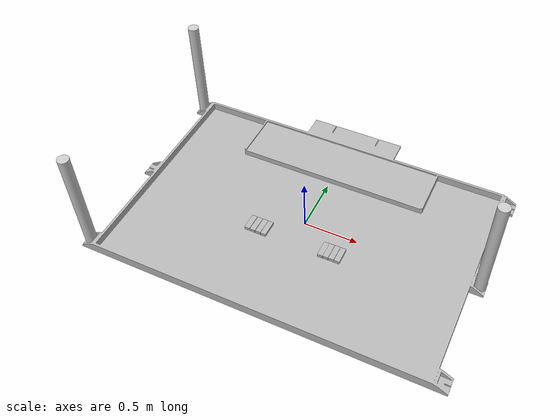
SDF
<sdf version='1.10'>
  <world name='empty'>
    <physics name='1ms' type='ignored'>
      <max_step_size>0.001</max_step_size>
      <real_time_factor>1</real_time_factor>
      <real_time_update_rate>1000</real_time_update_rate>
    </physics>
    <plugin name='gz::sim::systems::Physics' filename='gz-sim-physics-system'/>
    <plugin name='gz::sim::systems::UserCommands' filename='gz-sim-user-commands-system'/>
    <plugin name='gz::sim::systems::SceneBroadcaster' filename='gz-sim-scene-broadcaster-system'/>
    <plugin name='gz::sim::systems::Contact' filename='gz-sim-contact-system'/>
    <gravity>0 0 -9.8000000000000007</gravity>
    <magnetic_field>5.5644999999999998e-06 2.2875799999999999e-05 -4.2388400000000002e-05</magnetic_field>
    <atmosphere type='adiabatic'/>
    <scene>
      <ambient>0.400000006 0.400000006 0.400000006 1</ambient>
      <background>0.699999988 0.699999988 0.699999988 1</background>
      <shadows>true</shadows>
    </scene>
    <plugin name='gz::sim::systems::Physics' filename='gz-sim-physics-system'/>
    <plugin name='gz::sim::systems::Sensors' filename='gz-sim-sensors-system'/>
    <plugin name='gz::sim::systems::Imu' filename='gz-sim-imu-system'/>
    <plugin name='gz::sim::systems::UserCommands' filename='gz-sim-user-commands-system'/>
    <plugin name='gz::sim::systems::SceneBroadcaster' filename='gz-sim-scene-broadcaster-system'/>
    <plugin name='gz::sim::systems::MyPlugin' filename='libgz-match-plugin.so'/>
    <model name='Table_2024'>
      <static>true</static>
      <plugin name='gz::sim::systems::Label' filename='gz-sim-label-system'>
        <label>1</label>
      </plugin>
      <link name='link_0'>
        <gravity>false</gravity>
        <inertial>
          <inertia>
            <ixx>0.16666700000000001</ixx>
            <ixy>0</ixy>
            <ixz>0</ixz>
            <iyy>0.16666700000000001</iyy>
            <iyz>0</iyz>
            <izz>0.16666700000000001</izz>
          </inertia>
          <pose>0 0 0 0 0 0</pose>
          <mass>1</mass>
        </inertial>
        <pose>0 0 0 0 0 0</pose>
        <visual name='visual'>
          <pose>0 0 0 0 0 0</pose>
          <geometry>
            <mesh>
              <uri>file:///ezbot-v2/install/ezbot-v2-simulation/share/ezbot-v2-simulation/models/Table2026/table2026.dae</uri>
              <scale>1 1 1</scale>
            </mesh>
          </geometry>
          <transparency>0</transparency>
          <cast_shadows>true</cast_shadows>
        </visual>
        <collision name='collision'>
          <laser_retro>0</laser_retro>
          <max_contacts>10</max_contacts>
          <pose>0 0 0 0 0 0</pose>
          <geometry>
            <mesh>
              <uri>file:///ezbot-v2/install/ezbot-v2-simulation/share/ezbot-v2-simulation/models/Table2026/table2026.dae</uri>
              <scale>1 1 1</scale>
            </mesh>
          </geometry>
          <surface>
            <friction>
              <ode>
                <mu>1</mu>
                <mu2>1</mu2>
                <fdir1>0 0 0</fdir1>
                <slip1>0</slip1>
                <slip2>0</slip2>
              </ode>
              <torsional>
                <coefficient>1</coefficient>
                <patch_radius>0</patch_radius>
                <surface_radius>0</surface_radius>
                <use_patch_radius>true</use_patch_radius>
                <ode>
                  <slip>0</slip>
                </ode>
              </torsional>
            </friction>
            <contact>
              <collide_without_contact>false</collide_without_contact>
              <collide_without_contact_bitmask>1</collide_without_contact_bitmask>
              <collide_bitmask>1</collide_bitmask>
              <ode>
                <soft_cfm>0</soft_cfm>
                <soft_erp>0.20000000000000001</soft_erp>
                <kp>10000000000000</kp>
                <kd>1</kd>
                <max_vel>0.01</max_vel>
                <min_depth>0.01</min_depth>
              </ode>
              <bullet>
                <split_impulse>true</split_impulse>
                <split_impulse_penetration_threshold>-0.01</split_impulse_penetration_threshold>
                <soft_cfm>0</soft_cfm>
                <soft_erp>0.20000000000000001</soft_erp>
                <kp>10000000000000</kp>
                <kd>1</kd>
              </bullet>
            </contact>
          </surface>
        </collision>
        <enable_wind>false</enable_wind>
      </link>
      <pose>0 0 0 0 0 0</pose>
      <static>false</static>
      <allow_auto_disable>true</allow_auto_disable>
      <self_collide>false</self_collide>
    </model>
    <model name='Caisse_noisettes'>
      <static>false</static>
      <plugin name='gz::sim::systems::Label' filename='gz-sim-label-system'>
        <label>11</label>
      </plugin>
      <link name='link_0'>
        <gravity>true</gravity>
        <inertial>
          <pose>0 0 0.02 0 0 0</pose>
          <mass>0.025000000000000001</mass>
          <inertia>
            <ixx>2.5000000000000001e-05</ixx>
            <ixy>0</ixy>
            <ixz>0</ixz>
            <iyy>2.5000000000000001e-05</iyy>
            <iyz>0</iyz>
            <izz>7.9999999999999996e-06</izz>
          </inertia>
        </inertial>
        <pose>0 0 0 0 0 0</pose>
        <visual name='visual'>
          <pose>0 0 0 0 0 0</pose>
          <geometry>
            <mesh>
              <uri>file:///ezbot-v2/install/ezbot-v2-simulation/share/ezbot-v2-simulation/models/CaisseNoisette/CaisseNoisette.dae</uri>
              <scale>1 1 1</scale>
            </mesh>
          </geometry>
          <transparency>0</transparency>
          <cast_shadows>true</cast_shadows>
        </visual>
        <collision name='collision'>
          <laser_retro>0</laser_retro>
          <max_contacts>3</max_contacts>
          <pose>0 0 0.074999999999999997 0 0 0</pose>
          <geometry>
            <box>
              <size>0.050000000000000003 0.029999999999999999 0.14999999999999999</size>
            </box>
          </geometry>
          <surface>
            <friction>
              <ode>
                <mu>0.90000000000000002</mu>
                <mu2>0.90000000000000002</mu2>
              </ode>
            </friction>
            <contact>
              <ode>
                <soft_cfm>0</soft_cfm>
                <soft_erp>0.20000000000000001</soft_erp>
                <kp>10</kp>
                <kd>1000000000</kd>
                <max_vel>0.01</max_vel>
                <min_depth>0.001</min_depth>
              </ode>
            </contact>
            <bounce/>
          </surface>
        </collision>
        <enable_wind>false</enable_wind>
      </link>
      <pose>0.426732 -0.12675995640484372 0.014999988759249985 1.5707970936884716 1.3169680467733783e-18 1.9785953177418169e-17</pose>
      <allow_auto_disable>true</allow_auto_disable>
      <self_collide>false</self_collide>
    </model>
    <model name='Caisse_noisettes_1'>
      <static>false</static>
      <plugin name='gz::sim::systems::Label' filename='gz-sim-label-system'>
        <label>11</label>
      </plugin>
      <link name='link_0'>
        <gravity>true</gravity>
        <inertial>
          <pose>0 0 0.02 0 0 0</pose>
          <mass>0.025000000000000001</mass>
          <inertia>
            <ixx>2.5000000000000001e-05</ixx>
            <ixy>0</ixy>
            <ixz>0</ixz>
            <iyy>2.5000000000000001e-05</iyy>
            <iyz>0</iyz>
            <izz>7.9999999999999996e-06</izz>
          </inertia>
        </inertial>
        <pose>0 0 0 0 0 0</pose>
        <visual name='visual'>
          <pose>0 0 0 0 0 0</pose>
          <geometry>
            <mesh>
              <uri>file:///ezbot-v2/install/ezbot-v2-simulation/share/ezbot-v2-simulation/models/CaisseNoisette/CaisseNoisette.dae</uri>
              <scale>1 1 1</scale>
            </mesh>
          </geometry>
          <transparency>0</transparency>
          <cast_shadows>true</cast_shadows>
        </visual>
        <collision name='collision'>
          <laser_retro>0</laser_retro>
          <max_contacts>3</max_contacts>
          <pose>0 0 0.074999999999999997 0 0 0</pose>
          <geometry>
            <box>
              <size>0.050000000000000003 0.029999999999999999 0.14999999999999999</size>
            </box>
          </geometry>
          <surface>
            <friction>
              <ode>
                <mu>0.90000000000000002</mu>
                <mu2>0.90000000000000002</mu2>
              </ode>
            </friction>
            <contact>
              <ode>
                <soft_cfm>0</soft_cfm>
                <soft_erp>0.20000000000000001</soft_erp>
                <kp>10</kp>
                <kd>1000000000</kd>
                <max_vel>0.01</max_vel>
                <min_depth>0.001</min_depth>
              </ode>
            </contact>
            <bounce/>
          </surface>
        </collision>
        <enable_wind>false</enable_wind>
      </link>
      <pose>0.374052 -0.12575695640484372 0.014999988759249985 1.5707970936884716 2.8738073156656423e-19 1.9581324786029511e-17</pose>
      <allow_auto_disable>true</allow_auto_disable>
      <self_collide>false</self_collide>
    </model>
    <model name='Caisse_noisettes_2'>
      <static>false</static>
      <plugin name='gz::sim::systems::Label' filename='gz-sim-label-system'>
        <label>11</label>
      </plugin>
      <link name='link_0'>
        <gravity>true</gravity>
        <inertial>
          <pose>0 0 0.02 0 0 0</pose>
          <mass>0.025000000000000001</mass>
          <inertia>
            <ixx>2.5000000000000001e-05</ixx>
            <ixy>0</ixy>
            <ixz>0</ixz>
            <iyy>2.5000000000000001e-05</iyy>
            <iyz>0</iyz>
            <izz>7.9999999999999996e-06</izz>
          </inertia>
        </inertial>
        <pose>0 0 0 0 0 0</pose>
        <visual name='visual'>
          <pose>0 0 0 0 0 0</pose>
          <geometry>
            <mesh>
              <uri>file:///ezbot-v2/install/ezbot-v2-simulation/share/ezbot-v2-simulation/models/CaisseNoisette/CaisseNoisette.dae</uri>
              <scale>1 1 1</scale>
            </mesh>
          </geometry>
          <transparency>0</transparency>
          <cast_shadows>true</cast_shadows>
        </visual>
        <collision name='collision'>
          <laser_retro>0</laser_retro>
          <max_contacts>3</max_contacts>
          <pose>0 0 0.074999999999999997 0 0 0</pose>
          <geometry>
            <box>
              <size>0.050000000000000003 0.029999999999999999 0.14999999999999999</size>
            </box>
          </geometry>
          <surface>
            <friction>
              <ode>
                <mu>0.90000000000000002</mu>
                <mu2>0.90000000000000002</mu2>
              </ode>
            </friction>
            <contact>
              <ode>
                <soft_cfm>0</soft_cfm>
                <soft_erp>0.20000000000000001</soft_erp>
                <kp>10</kp>
                <kd>1000000000</kd>
                <max_vel>0.01</max_vel>
                <min_depth>0.001</min_depth>
              </ode>
            </contact>
            <bounce/>
          </surface>
        </collision>
        <enable_wind>false</enable_wind>
      </link>
      <pose>-0.37543174232902859 -0.12555076203495605 0.014999985913170942 1.5707962771589556 -2.9833479919111345e-08 -0.019598004272628443</pose>
      <allow_auto_disable>true</allow_auto_disable>
      <self_collide>false</self_collide>
    </model>
    <model name='Caisse_noisettes_3'>
      <static>false</static>
      <plugin name='gz::sim::systems::Label' filename='gz-sim-label-system'>
        <label>11</label>
      </plugin>
      <link name='link_0'>
        <gravity>true</gravity>
        <inertial>
          <pose>0 0 0.02 0 0 0</pose>
          <mass>0.025000000000000001</mass>
          <inertia>
            <ixx>2.5000000000000001e-05</ixx>
            <ixy>0</ixy>
            <ixz>0</ixz>
            <iyy>2.5000000000000001e-05</iyy>
            <iyz>0</iyz>
            <izz>7.9999999999999996e-06</izz>
          </inertia>
        </inertial>
        <pose>0 0 0 0 0 0</pose>
        <visual name='visual'>
          <pose>0 0 0 0 0 0</pose>
          <geometry>
            <mesh>
              <uri>file:///ezbot-v2/install/ezbot-v2-simulation/share/ezbot-v2-simulation/models/CaisseNoisette/CaisseNoisette.dae</uri>
              <scale>1 1 1</scale>
            </mesh>
          </geometry>
          <transparency>0</transparency>
          <cast_shadows>true</cast_shadows>
        </visual>
        <collision name='collision'>
          <laser_retro>0</laser_retro>
          <max_contacts>3</max_contacts>
          <pose>0 0 0.074999999999999997 0 0 0</pose>
          <geometry>
            <box>
              <size>0.050000000000000003 0.029999999999999999 0.14999999999999999</size>
            </box>
          </geometry>
          <surface>
            <friction>
              <ode>
                <mu>0.90000000000000002</mu>
                <mu2>0.90000000000000002</mu2>
              </ode>
            </friction>
            <contact>
              <ode>
                <soft_cfm>0</soft_cfm>
                <soft_erp>0.20000000000000001</soft_erp>
                <kp>10</kp>
                <kd>1000000000</kd>
                <max_vel>0.01</max_vel>
                <min_depth>0.001</min_depth>
              </ode>
            </contact>
            <bounce/>
          </surface>
        </collision>
        <enable_wind>false</enable_wind>
      </link>
      <pose>-0.27139598076638932 -0.12672108732739637 0.014999975852147806 1.5707958099992969 -1.3245979019194149e-07 -0.009055060004250718</pose>
      <allow_auto_disable>true</allow_auto_disable>
      <self_collide>false</self_collide>
    </model>
    <model name='Caisse_noisettes_4'>
      <static>false</static>
      <plugin name='gz::sim::systems::Label' filename='gz-sim-label-system'>
        <label>11</label>
      </plugin>
      <link name='link_0'>
        <gravity>true</gravity>
        <inertial>
          <pose>0 0 0.02 0 0 0</pose>
          <mass>0.025000000000000001</mass>
          <inertia>
            <ixx>2.5000000000000001e-05</ixx>
            <ixy>0</ixy>
            <ixz>0</ixz>
            <iyy>2.5000000000000001e-05</iyy>
            <iyz>0</iyz>
            <izz>7.9999999999999996e-06</izz>
          </inertia>
        </inertial>
        <pose>0 0 0 0 0 0</pose>
        <visual name='visual'>
          <pose>0 0 0 0 0 0</pose>
          <geometry>
            <mesh>
              <uri>file:///ezbot-v2/install/ezbot-v2-simulation/share/ezbot-v2-simulation/models/CaisseNoisette/CaisseNoisette.dae</uri>
              <scale>1 1 1</scale>
            </mesh>
          </geometry>
          <transparency>0</transparency>
          <cast_shadows>true</cast_shadows>
        </visual>
        <collision name='collision'>
          <laser_retro>0</laser_retro>
          <max_contacts>3</max_contacts>
          <pose>0 0 0.074999999999999997 0 0 0</pose>
          <geometry>
            <box>
              <size>0.050000000000000003 0.029999999999999999 0.14999999999999999</size>
            </box>
          </geometry>
          <surface>
            <friction>
              <ode>
                <mu>0.90000000000000002</mu>
                <mu2>0.90000000000000002</mu2>
              </ode>
            </friction>
            <contact>
              <ode>
                <soft_cfm>0</soft_cfm>
                <soft_erp>0.20000000000000001</soft_erp>
                <kp>10</kp>
                <kd>1000000000</kd>
                <max_vel>0.01</max_vel>
                <min_depth>0.001</min_depth>
              </ode>
            </contact>
            <bounce/>
          </surface>
        </collision>
        <enable_wind>false</enable_wind>
      </link>
      <pose>0.32200999999985475 -0.12637694490083248 0.014999985792964037 -1.5707963267560681 -1.5949948245911933e-14 -3.1415900000000621</pose>
      <allow_auto_disable>true</allow_auto_disable>
      <self_collide>false</self_collide>
    </model>
    <model name='Caisse_noisettes_5'>
      <static>false</static>
      <plugin name='gz::sim::systems::Label' filename='gz-sim-label-system'>
        <label>11</label>
      </plugin>
      <link name='link_0'>
        <gravity>true</gravity>
        <inertial>
          <pose>0 0 0.02 0 0 0</pose>
          <mass>0.025000000000000001</mass>
          <inertia>
            <ixx>2.5000000000000001e-05</ixx>
            <ixy>0</ixy>
            <ixz>0</ixz>
            <iyy>2.5000000000000001e-05</iyy>
            <iyz>0</iyz>
            <izz>7.9999999999999996e-06</izz>
          </inertia>
        </inertial>
        <pose>0 0 0 0 0 0</pose>
        <visual name='visual'>
          <pose>0 0 0 0 0 0</pose>
          <geometry>
            <mesh>
              <uri>file:///ezbot-v2/install/ezbot-v2-simulation/share/ezbot-v2-simulation/models/CaisseNoisette/CaisseNoisette.dae</uri>
              <scale>1 1 1</scale>
            </mesh>
          </geometry>
          <transparency>0</transparency>
          <cast_shadows>true</cast_shadows>
        </visual>
        <collision name='collision'>
          <laser_retro>0</laser_retro>
          <max_contacts>3</max_contacts>
          <pose>0 0 0.074999999999999997 0 0 0</pose>
          <geometry>
            <box>
              <size>0.050000000000000003 0.029999999999999999 0.14999999999999999</size>
            </box>
          </geometry>
          <surface>
            <friction>
              <ode>
                <mu>0.90000000000000002</mu>
                <mu2>0.90000000000000002</mu2>
              </ode>
            </friction>
            <contact>
              <ode>
                <soft_cfm>0</soft_cfm>
                <soft_erp>0.20000000000000001</soft_erp>
                <kp>10</kp>
                <kd>1000000000</kd>
                <max_vel>0.01</max_vel>
                <min_depth>0.001</min_depth>
              </ode>
            </contact>
            <bounce/>
          </surface>
        </collision>
        <enable_wind>false</enable_wind>
      </link>
      <pose>0.27201000000014514 -0.12862494490083234 0.014999985792964039 -1.5707963267560736 1.522333373760404e-14 3.1415900000000634</pose>
      <allow_auto_disable>true</allow_auto_disable>
      <self_collide>false</self_collide>
    </model>
    <model name='Caisse_noisettes_6'>
      <static>false</static>
      <plugin name='gz::sim::systems::Label' filename='gz-sim-label-system'>
        <label>11</label>
      </plugin>
      <link name='link_0'>
        <gravity>true</gravity>
        <inertial>
          <pose>0 0 0.02 0 0 0</pose>
          <mass>0.025000000000000001</mass>
          <inertia>
            <ixx>2.5000000000000001e-05</ixx>
            <ixy>0</ixy>
            <ixz>0</ixz>
            <iyy>2.5000000000000001e-05</iyy>
            <iyz>0</iyz>
            <izz>7.9999999999999996e-06</izz>
          </inertia>
        </inertial>
        <pose>0 0 0 0 0 0</pose>
        <visual name='visual'>
          <pose>0 0 0 0 0 0</pose>
          <geometry>
            <mesh>
              <uri>file:///ezbot-v2/install/ezbot-v2-simulation/share/ezbot-v2-simulation/models/CaisseNoisette/CaisseNoisette.dae</uri>
              <scale>1 1 1</scale>
            </mesh>
          </geometry>
          <transparency>0</transparency>
          <cast_shadows>true</cast_shadows>
        </visual>
        <collision name='collision'>
          <laser_retro>0</laser_retro>
          <max_contacts>3</max_contacts>
          <pose>0 0 0.074999999999999997 0 0 0</pose>
          <geometry>
            <box>
              <size>0.050000000000000003 0.029999999999999999 0.14999999999999999</size>
            </box>
          </geometry>
          <surface>
            <friction>
              <ode>
                <mu>0.90000000000000002</mu>
                <mu2>0.90000000000000002</mu2>
              </ode>
            </friction>
            <contact>
              <ode>
                <soft_cfm>0</soft_cfm>
                <soft_erp>0.20000000000000001</soft_erp>
                <kp>10</kp>
                <kd>1000000000</kd>
                <max_vel>0.01</max_vel>
                <min_depth>0.001</min_depth>
              </ode>
            </contact>
            <bounce/>
          </surface>
        </collision>
        <enable_wind>false</enable_wind>
      </link>
      <pose>-0.32297600151712635 -0.12530794488345279 0.014999986555270012 -1.5707963266481995 1.8743014767834409e-08 3.1326699999994934</pose>
      <allow_auto_disable>true</allow_auto_disable>
      <self_collide>false</self_collide>
    </model>
    <model name='Caisse_noisettes_6_1'>
      <static>false</static>
      <plugin name='gz::sim::systems::Label' filename='gz-sim-label-system'>
        <label>11</label>
      </plugin>
      <link name='link_0'>
        <gravity>true</gravity>
        <inertial>
          <pose>0 0 0.02 0 0 0</pose>
          <mass>0.025000000000000001</mass>
          <inertia>
            <ixx>2.5000000000000001e-05</ixx>
            <ixy>0</ixy>
            <ixz>0</ixz>
            <iyy>2.5000000000000001e-05</iyy>
            <iyz>0</iyz>
            <izz>7.9999999999999996e-06</izz>
          </inertia>
        </inertial>
        <pose>0 0 0 0 0 0</pose>
        <visual name='visual'>
          <pose>0 0 0 0 0 0</pose>
          <geometry>
            <mesh>
              <uri>file:///ezbot-v2/install/ezbot-v2-simulation/share/ezbot-v2-simulation/models/CaisseNoisette/CaisseNoisette.dae</uri>
              <scale>1 1 1</scale>
            </mesh>
          </geometry>
          <transparency>0</transparency>
          <cast_shadows>true</cast_shadows>
        </visual>
        <collision name='collision'>
          <laser_retro>0</laser_retro>
          <max_contacts>3</max_contacts>
          <pose>0 0 0.074999999999999997 0 0 0</pose>
          <geometry>
            <box>
              <size>0.050000000000000003 0.029999999999999999 0.14999999999999999</size>
            </box>
          </geometry>
          <surface>
            <friction>
              <ode>
                <mu>0.90000000000000002</mu>
                <mu2>0.90000000000000002</mu2>
              </ode>
            </friction>
            <contact>
              <ode>
                <soft_cfm>0</soft_cfm>
                <soft_erp>0.20000000000000001</soft_erp>
                <kp>10</kp>
                <kd>1000000000</kd>
                <max_vel>0.01</max_vel>
                <min_depth>0.001</min_depth>
              </ode>
            </contact>
            <bounce/>
          </surface>
        </collision>
        <enable_wind>false</enable_wind>
      </link>
      <pose>-0.42987799948028138 -0.12431694490328354 0.014999985792964035 -1.5707963267560738 -1.9949319973733282e-16 3.1321599999999674</pose>
      <allow_auto_disable>true</allow_auto_disable>
      <self_collide>false</self_collide>
    </model>
    <include>
      <uri>file:///ezbot-v2/install/ezbot-v2-simulation/share/ezbot-v2-simulation/models/poteau</uri>
      <name>Poteau</name>
      <pose>-1.5940834785821341 0.95127999884232251 0 0 0 0</pose>
    </include>
    <include>
      <uri>file:///ezbot-v2/install/ezbot-v2-simulation/share/ezbot-v2-simulation/models/poteau</uri>
      <name>Poteau_0</name>
      <pose>-1.5907866783212912 -0.95203091257895289 0 0 0 0</pose>
    </include>
    <include>
      <uri>file:///ezbot-v2/install/ezbot-v2-simulation/share/ezbot-v2-simulation/models/poteau</uri>
      <name>Poteau_1</name>
      <pose>1.5912342301951856 0.002020733759849222 0 0 0 0</pose>
    </include>
    <light name='sun' type='directional'>
      <pose>0 0 10 0 0 0</pose>
      <cast_shadows>true</cast_shadows>
      <intensity>1</intensity>
      <direction>-0.5 0.10000000000000001 -0.90000000000000002</direction>
      <diffuse>0.800000012 0.800000012 0.800000012 1</diffuse>
      <specular>0.200000003 0.200000003 0.200000003 1</specular>
      <attenuation>
        <range>1000</range>
        <linear>0.0099999997764825821</linear>
        <constant>0.89999997615814209</constant>
        <quadratic>0.0010000000474974513</quadratic>
      </attenuation>
      <spot>
        <inner_angle>0</inner_angle>
        <outer_angle>0</outer_angle>
        <falloff>0</falloff>
      </spot>
    </light>
  </world>
</sdf>

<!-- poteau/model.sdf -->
<sdf version='1.7'>
  <model name='Poteau'>
   	<static>true</static>
    <allow_auto_disable>true</allow_auto_disable>
    <plugin filename="gz-sim-label-system" name="gz::sim::systems::Label">
        <label>2</label>
    </plugin>
    <link name='link_0'>
			<gravity>0</gravity>
      <inertial>
        <pose>0 0 0.02 0 0 0</pose>
        <mass>0.025</mass>
        <inertia>
          <ixx>2.5e-5</ixx>
          <ixy>0</ixy>
          <ixz>0</ixz>
          <iyy>2.5e-5</iyy>
          <iyz>0</iyz>
          <izz>8e-6</izz>
        </inertia>
      </inertial>
      <pose>0 0 0.5 0 0 0</pose>
      <visual name='visual'>
        <pose>0 0 0 0 -0 0</pose>
        <geometry>
          <cylinder>
            <radius>0.05</radius>
            <length>1.0</length>
          </cylinder>
        </geometry>
        <material>
          <ambient>0.8 0.8 0.8 1</ambient>
          <diffuse>0.8 0.8 0.8 1</diffuse>
          <specular>0.1 0.1 0.1 1</specular>
          <emissive>0 0 0 1</emissive>
        </material>
        <transparency>0</transparency>
        <cast_shadows>1</cast_shadows>
      </visual>

      <collision name='collision'>
        <laser_retro>1</laser_retro>
        <max_contacts>5 </max_contacts>
        <pose>0 0 0.5 0 0 0</pose>
        <geometry>
          <cylinder>
            <radius>0.05</radius>
            <length>1.0</length>
          </cylinder>
        </geometry>
      </collision>
    </link>
    <pose>0 0 0 0 0 0</pose>

    <allow_auto_disable>1</allow_auto_disable>
  </model>
</sdf>
